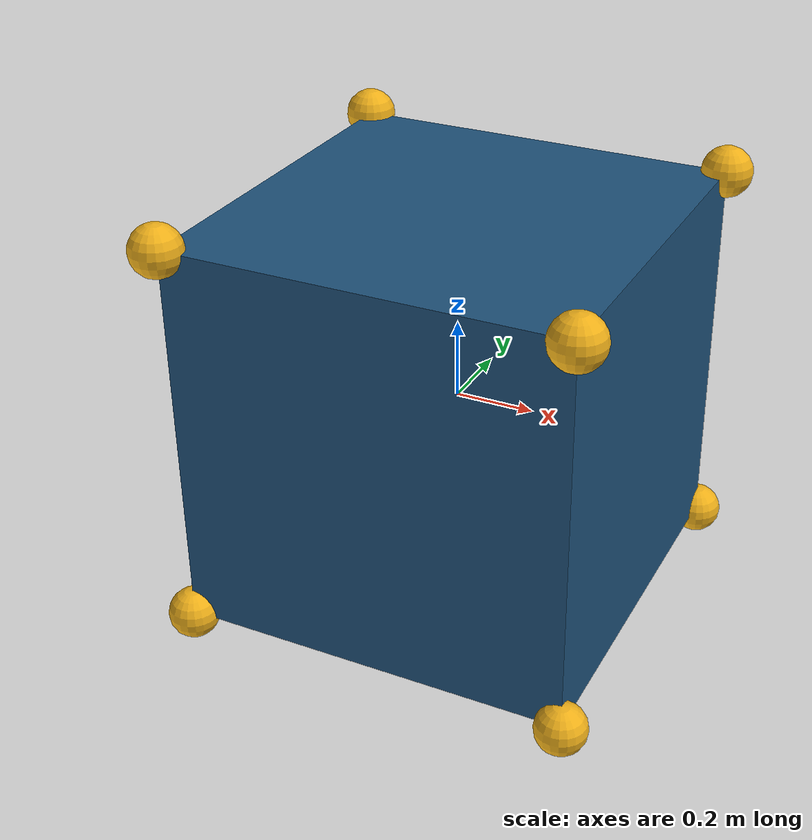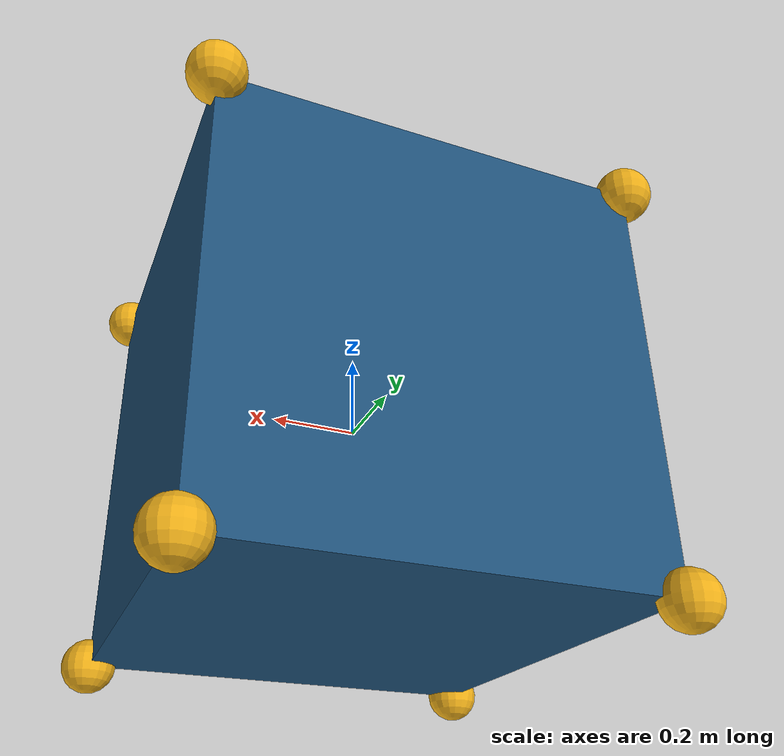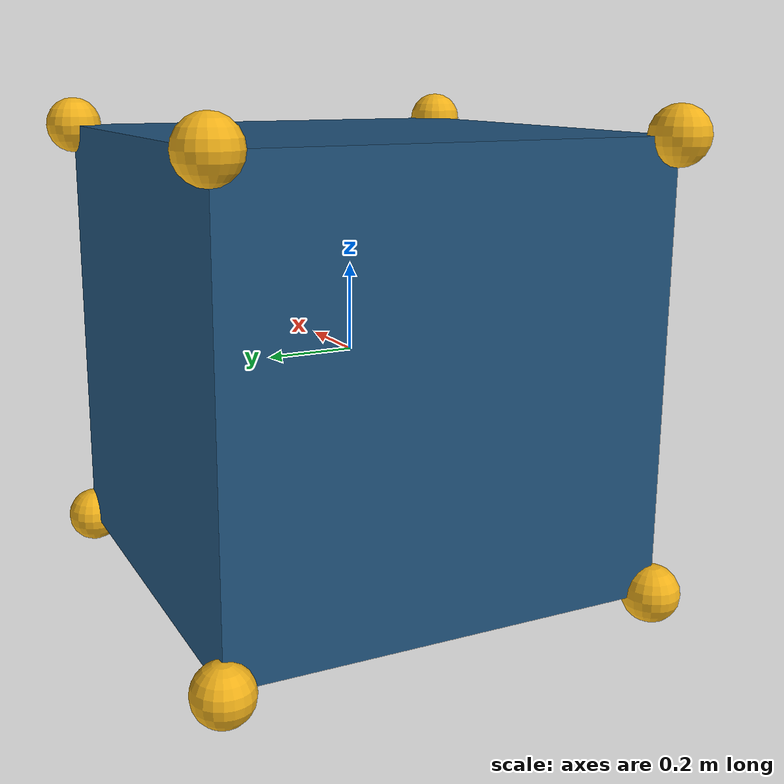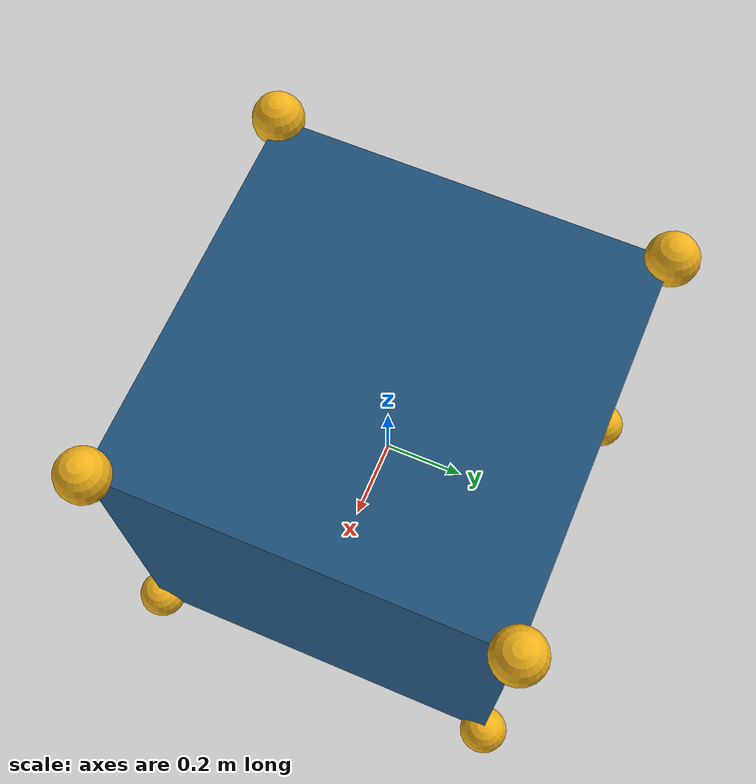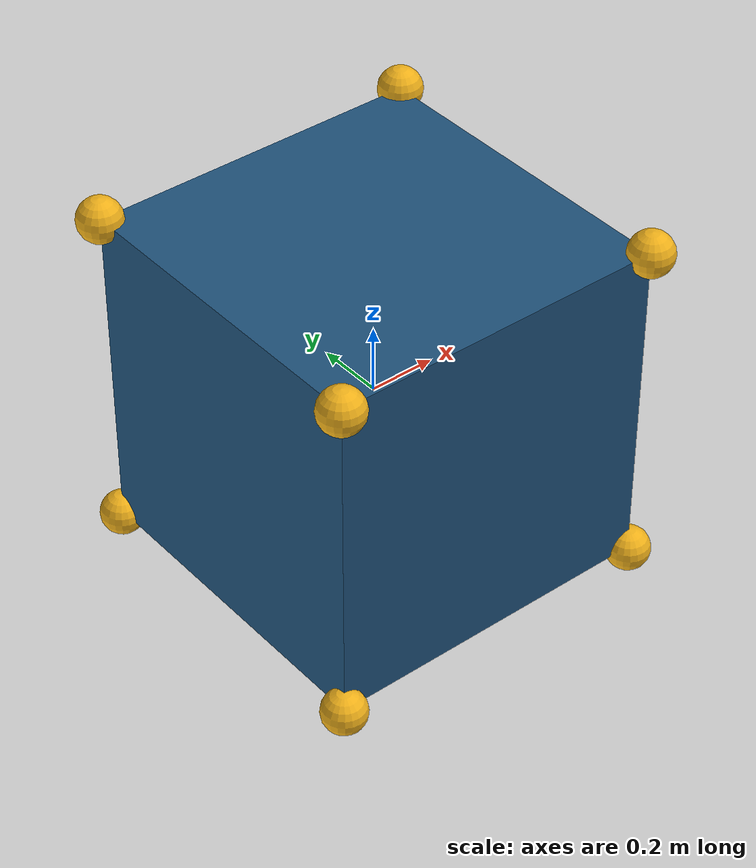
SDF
<?xml version="1.0" ?>
<sdf version="1.6">
  <model name="cdpr_platform">
    <static>false</static>
    <allow_auto_disable>false</allow_auto_disable>
    <link name="platform_link">
      <inertial>
        <mass>50.0</mass>
        <inertia>
          <ixx>8.333333333</ixx>
          <iyy>8.333333333</iyy>
          <izz>8.333333333</izz>
          <ixy>0</ixy>
          <ixz>0</ixz>
          <iyz>0</iyz>
        </inertia>
      </inertial>
      <collision name="platform_collision">
        <geometry>
          <box>
            <size>1 1 1</size>
          </box>
        </geometry>
        <surface>
          <friction>
            <ode>
              <mu>0.1</mu>
              <mu2>0.1</mu2>
            </ode>
          </friction>
        </surface>
      </collision>
      <visual name="platform_visual">
        <geometry>
          <box>
            <size>1 1 1</size>
          </box>
        </geometry>
        <material>
          <ambient>0.12 0.22 0.32 1</ambient>
          <diffuse>0.12 0.32 0.48 1</diffuse>
          <specular>0.25 0.25 0.25 1</specular>
        </material>
      </visual>

      <visual name="attachment_0"><pose>-0.5 -0.5  0.5 0 0 0</pose><geometry><sphere><radius>0.065</radius></sphere></geometry><material><ambient>0.95 0.70 0.10 1</ambient><diffuse>0.95 0.70 0.10 1</diffuse></material></visual>
      <visual name="attachment_1"><pose> 0.5 -0.5  0.5 0 0 0</pose><geometry><sphere><radius>0.065</radius></sphere></geometry><material><ambient>0.95 0.70 0.10 1</ambient><diffuse>0.95 0.70 0.10 1</diffuse></material></visual>
      <visual name="attachment_2"><pose> 0.5  0.5  0.5 0 0 0</pose><geometry><sphere><radius>0.065</radius></sphere></geometry><material><ambient>0.95 0.70 0.10 1</ambient><diffuse>0.95 0.70 0.10 1</diffuse></material></visual>
      <visual name="attachment_3"><pose>-0.5  0.5  0.5 0 0 0</pose><geometry><sphere><radius>0.065</radius></sphere></geometry><material><ambient>0.95 0.70 0.10 1</ambient><diffuse>0.95 0.70 0.10 1</diffuse></material></visual>
      <visual name="attachment_4"><pose>-0.5 -0.5 -0.5 0 0 0</pose><geometry><sphere><radius>0.065</radius></sphere></geometry><material><ambient>0.95 0.70 0.10 1</ambient><diffuse>0.95 0.70 0.10 1</diffuse></material></visual>
      <visual name="attachment_5"><pose> 0.5 -0.5 -0.5 0 0 0</pose><geometry><sphere><radius>0.065</radius></sphere></geometry><material><ambient>0.95 0.70 0.10 1</ambient><diffuse>0.95 0.70 0.10 1</diffuse></material></visual>
      <visual name="attachment_6"><pose> 0.5  0.5 -0.5 0 0 0</pose><geometry><sphere><radius>0.065</radius></sphere></geometry><material><ambient>0.95 0.70 0.10 1</ambient><diffuse>0.95 0.70 0.10 1</diffuse></material></visual>
      <visual name="attachment_7"><pose>-0.5  0.5 -0.5 0 0 0</pose><geometry><sphere><radius>0.065</radius></sphere></geometry><material><ambient>0.95 0.70 0.10 1</ambient><diffuse>0.95 0.70 0.10 1</diffuse></material></visual>
    </link>

    <plugin name="cdpr_force_plugin" filename="libcdpr_force_plugin.so">
      <linkName>platform_link</linkName>
    </plugin>
  </model>
</sdf>
